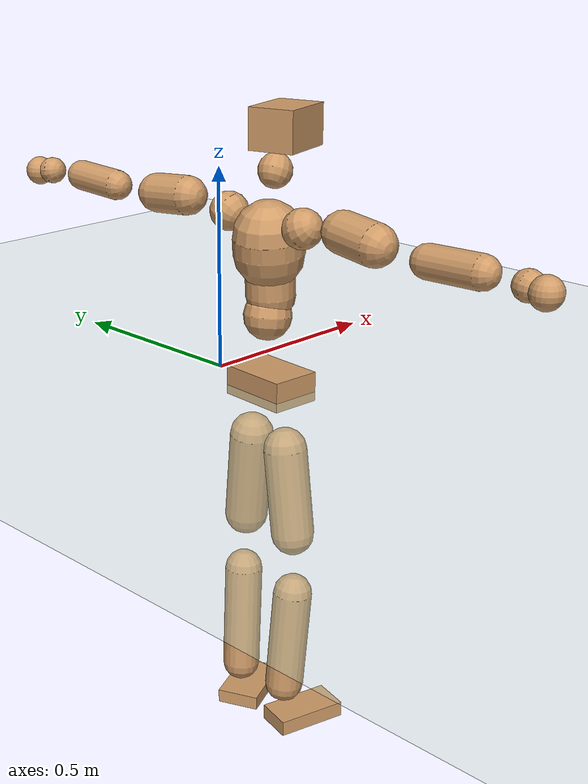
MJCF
<mujoco model="humanoid">
  <compiler coordinate="local" angle="radian"/>
  <default>
    <joint damping="0.0" armature="0.01" stiffness="0.0" limited="true"/>
    <geom conaffinity="1" condim="3" contype="7" margin="0.001" rgba="0.8 0.6 .4 1"/>
  </default>
  <asset>
    <texture type="skybox" builtin="gradient" rgb1=".4 .5 .6" rgb2="0 0 0" width="100" height="100"/>
    <texture builtin="flat" height="1278" mark="cross" markrgb="1 1 1" name="texgeom" random="0.01" rgb1="0.8 0.6 0.4" rgb2="0.8 0.6 0.4" type="cube" width="127"/>
    <texture builtin="checker" height="100" name="texplane" rgb1="0 0 0" rgb2="0.8 0.8 0.8" type="2d" width="100"/>
    <material name="MatPlane" reflectance="0.5" shininess="1" specular="1" texrepeat="60 60" texture="texplane"/>
    <material name="geom" texture="texgeom" texuniform="true"/>
  </asset>
  <worldbody>
    <light cutoff="100" diffuse="1 1 1" dir="-0 0 -1.3" directional="true" exponent="1" pos="0 0 1.3" specular=".1 .1 .1"/>
    <geom conaffinity="1" condim="3" name="floor" pos="0 0 0" rgba="0.8 0.9 0.8 1" size="100 100 .2" type="plane" material="MatPlane"/>
    <body name="Pelvis" pos="-0.0052 -0.1927 0.0191">
      <freejoint name="Pelvis"/>
      <geom type="box" contype="1" conaffinity="1" density="5359.37538" pos="-0.0118 0.0007 -0.0078" size="0.0622 0.0885 0.036" quat="0.9996 0.0000 0.0000 -0.0279" name="Pelvis"/>
      <body name="L_Hip" pos="-0.0225 0.0467 -0.0709">
        <joint name="L_Hip_x" type="hinge" pos="0 0 0" axis="1 0 0" stiffness="1600" damping="160" armature="0.02" range="-180.0000 180.0000"/>
        <joint name="L_Hip_y" type="hinge" pos="0 0 0" axis="0 1 0" stiffness="1600" damping="160" armature="0.02" range="-180.0000 180.0000"/>
        <joint name="L_Hip_z" type="hinge" pos="0 0 0" axis="0 0 1" stiffness="1600" damping="160" armature="0.02" range="-180.0000 180.0000"/>
        <geom type="capsule" contype="1" conaffinity="1" density="2040.816327" size="0.054" fromto="0.0037 0.0108 -0.0832 0.0140 0.0407 -0.3121" name="L_Hip"/>
        <body name="L_Knee" pos="0.0178 0.0515 -0.3953">
          <joint name="L_Knee_x" type="hinge" pos="0 0 0" axis="1 0 0" stiffness="1600" damping="160" armature="0.02" range="-180.0000 180.0000"/>
          <joint name="L_Knee_y" type="hinge" pos="0 0 0" axis="0 1 0" stiffness="1600" damping="160" armature="0.02" range="-180.0000 180.0000"/>
          <joint name="L_Knee_z" type="hinge" pos="0 0 0" axis="0 0 1" stiffness="1600" damping="160" armature="0.02" range="-180.0000 180.0000"/>
          <geom type="capsule" contype="1" conaffinity="1" density="1234.567901" size="0.0474" fromto="-0.0050 -0.0020 -0.0772 -0.0225 -0.0091 -0.3489" name="L_Knee"/>
          <body name="L_Ankle" pos="-0.0274 -0.0111 -0.4261">
            <joint name="L_Ankle_x" type="hinge" pos="0 0 0" axis="1 0 0" stiffness="1600" damping="160" armature="0.02" range="-180.0000 180.0000"/>
            <joint name="L_Ankle_y" type="hinge" pos="0 0 0" axis="0 1 0" stiffness="1600" damping="160" armature="0.02" range="-180.0000 180.0000"/>
            <joint name="L_Ankle_z" type="hinge" pos="0 0 0" axis="0 0 1" stiffness="1600" damping="160" armature="0.02" range="-180.0000 180.0000"/>
            <geom type="box" contype="1" conaffinity="1" density="1000.000049" pos="0.0583 0.0256 -0.0301" size="0.0851 0.0542 0.0177" quat="0.9787 0.0000 0.0000 0.2053" name="L_Ankle"/>
            <body name="L_Toe" pos="0.1165 0.0511 -0.0603">
              <joint name="L_Toe_x" type="hinge" pos="0 0 0" axis="1 0 0" stiffness="1000" damping="100" armature="0.02" range="-180.0000 180.0000"/>
              <joint name="L_Toe_y" type="hinge" pos="0 0 0" axis="0 1 0" stiffness="1000" damping="100" armature="0.02" range="-180.0000 180.0000"/>
              <joint name="L_Toe_z" type="hinge" pos="0 0 0" axis="0 0 1" stiffness="1000" damping="100" armature="0.02" range="-180.0000 180.0000"/>
              <geom type="box" contype="1" conaffinity="1" density="7629935.239909" pos="0.0000 0.0000 0.0315" size="0.001 0.0026 0.001" quat="0.9779 0.0000 0.0000 0.2091" name="L_Toe"/>
            </body>
          </body>
        </body>
      </body>
      <body name="R_Hip" pos="-0.02 -0.0468 -0.0782">
        <joint name="R_Hip_x" type="hinge" pos="0 0 0" axis="1 0 0" stiffness="1600" damping="160" armature="0.02" range="-180.0000 180.0000"/>
        <joint name="R_Hip_y" type="hinge" pos="0 0 0" axis="0 1 0" stiffness="1600" damping="160" armature="0.02" range="-180.0000 180.0000"/>
        <joint name="R_Hip_z" type="hinge" pos="0 0 0" axis="0 0 1" stiffness="1600" damping="160" armature="0.02" range="-180.0000 180.0000"/>
        <geom type="capsule" contype="1" conaffinity="1" density="2040.816327" size="0.0528" fromto="0.0005 -0.0101 -0.0822 0.0019 -0.0369 -0.3007" name="R_Hip"/>
        <body name="R_Knee" pos="0.0024 -0.047 -0.3829">
          <joint name="R_Knee_x" type="hinge" pos="0 0 0" axis="1 0 0" stiffness="1600" damping="160" armature="0.02" range="-180.0000 180.0000"/>
          <joint name="R_Knee_y" type="hinge" pos="0 0 0" axis="0 1 0" stiffness="1600" damping="160" armature="0.02" range="-180.0000 180.0000"/>
          <joint name="R_Knee_z" type="hinge" pos="0 0 0" axis="0 0 1" stiffness="1600" damping="160" armature="0.02" range="-180.0000 180.0000"/>
          <geom type="capsule" contype="1" conaffinity="1" density="1234.567901" size="0.0483" fromto="-0.0050 0.0031 -0.0781 -0.0216 0.0133 -0.3369" name="R_Knee"/>
          <body name="R_Ankle" pos="-0.0266 0.0164 -0.415">
            <joint name="R_Ankle_x" type="hinge" pos="0 0 0" axis="1 0 0" stiffness="1600" damping="160" armature="0.02" range="-180.0000 180.0000"/>
            <joint name="R_Ankle_y" type="hinge" pos="0 0 0" axis="0 1 0" stiffness="1600" damping="160" armature="0.02" range="-180.0000 180.0000"/>
            <joint name="R_Ankle_z" type="hinge" pos="0 0 0" axis="0 0 1" stiffness="1600" damping="160" armature="0.02" range="-180.0000 180.0000"/>
            <geom type="box" contype="1" conaffinity="1" density="1000.000046" pos="0.0633 -0.0155 -0.0302" size="0.09 0.0469 0.0197" quat="0.9928 0.0000 0.0000 -0.1198" name="R_Ankle"/>
            <body name="R_Toe" pos="0.1265 -0.031 -0.0604">
              <joint name="R_Toe_x" type="hinge" pos="0 0 0" axis="1 0 0" stiffness="1000" damping="100" armature="0.02" range="-180.0000 180.0000"/>
              <joint name="R_Toe_y" type="hinge" pos="0 0 0" axis="0 1 0" stiffness="1000" damping="100" armature="0.02" range="-180.0000 180.0000"/>
              <joint name="R_Toe_z" type="hinge" pos="0 0 0" axis="0 0 1" stiffness="1000" damping="100" armature="0.02" range="-180.0000 180.0000"/>
              <geom type="box" contype="1" conaffinity="1" density="9223143.677989" pos="0.0000 0.0000 0.0321" size="0.0008 0.0023 0.0011" quat="0.9939 0.0000 0.0000 -0.1106" name="R_Toe"/>
            </body>
          </body>
        </body>
      </body>
      <body name="Torso" pos="-0.0283 0.0041 0.1021">
        <joint name="Torso_x" type="hinge" pos="0 0 0" axis="1 0 0" stiffness="2000" damping="200" armature="0.02" range="-180.0000 180.0000"/>
        <joint name="Torso_y" type="hinge" pos="0 0 0" axis="0 1 0" stiffness="2000" damping="200" armature="0.02" range="-180.0000 180.0000"/>
        <joint name="Torso_z" type="hinge" pos="0 0 0" axis="0 0 1" stiffness="2000" damping="200" armature="0.02" range="-180.0000 180.0000"/>
        <geom type="capsule" contype="1" conaffinity="1" density="2040.816327" size="0.0581" fromto="0.0102 0.0016 0.0577 0.0105 0.0017 0.0597" name="Torso"/>
        <body name="Spine" pos="0.0207 0.0033 0.1174">
          <joint name="Spine_x" type="hinge" pos="0 0 0" axis="1 0 0" stiffness="2000" damping="200" armature="0.02" range="-180.0000 180.0000"/>
          <joint name="Spine_y" type="hinge" pos="0 0 0" axis="0 1 0" stiffness="2000" damping="200" armature="0.02" range="-180.0000 180.0000"/>
          <joint name="Spine_z" type="hinge" pos="0 0 0" axis="0 0 1" stiffness="2000" damping="200" armature="0.02" range="-180.0000 180.0000"/>
          <geom type="capsule" contype="1" conaffinity="1" density="2040.816327" size="0.0597" fromto="-0.0027 -0.0004 0.0596 0.0005 0.0001 -0.0118" name="Spine"/>
          <body name="Chest" pos="-0.0022 -0.0004 0.0478">
            <joint name="Chest_x" type="hinge" pos="0 0 0" axis="1 0 0" stiffness="2000" damping="200" armature="0.02" range="-180.0000 180.0000"/>
            <joint name="Chest_y" type="hinge" pos="0 0 0" axis="0 1 0" stiffness="2000" damping="200" armature="0.02" range="-180.0000 180.0000"/>
            <joint name="Chest_z" type="hinge" pos="0 0 0" axis="0 0 1" stiffness="2000" damping="200" armature="0.02" range="-180.0000 180.0000"/>
            <geom type="capsule" contype="1" conaffinity="1" density="2040.816327" size="0.0848" fromto="-0.0103 -0.0049 0.0840 -0.0056 -0.0026 0.0453" name="Chest"/>
            <body name="Neck" pos="-0.015 -0.013 0.1874">
              <joint name="Neck_x" type="hinge" pos="0 0 0" axis="1 0 0" stiffness="1000" damping="100" armature="0.02" range="-180.0000 180.0000"/>
              <joint name="Neck_y" type="hinge" pos="0 0 0" axis="0 1 0" stiffness="1000" damping="100" armature="0.02" range="-180.0000 180.0000"/>
              <joint name="Neck_z" type="hinge" pos="0 0 0" axis="0 0 1" stiffness="1000" damping="100" armature="0.02" range="-180.0000 180.0000"/>
              <geom type="capsule" contype="1" conaffinity="1" density="1000" size="0.0403" fromto="0.0220 0.0054 0.0445 0.0229 0.0056 0.0463" name="Neck"/>
              <body name="Head" pos="0.0449 0.0109 0.0909">
                <joint name="Head_x" type="hinge" pos="0 0 0" axis="1 0 0" stiffness="1000" damping="100" armature="0.02" range="-180.0000 180.0000"/>
                <joint name="Head_y" type="hinge" pos="0 0 0" axis="0 1 0" stiffness="1000" damping="100" armature="0.02" range="-180.0000 180.0000"/>
                <joint name="Head_z" type="hinge" pos="0 0 0" axis="0 0 1" stiffness="1000" damping="100" armature="0.02" range="-180.0000 180.0000"/>
                <geom type="box" contype="1" conaffinity="1" density="2250.000162" pos="0.0234 0.0065 0.0464" size="0.0732 0.0566 0.0484" quat="0.9910 0.0000 0.0000 0.1342" name="Head"/>
              </body>
            </body>
            <body name="L_Thorax" pos="-0.0136 0.0608 0.1014">
              <joint name="L_Thorax_x" type="hinge" pos="0 0 0" axis="1 0 0" stiffness="1000" damping="100" armature="0.02" range="-180.0000 180.0000"/>
              <joint name="L_Thorax_y" type="hinge" pos="0 0 0" axis="0 1 0" stiffness="1000" damping="100" armature="0.02" range="-180.0000 180.0000"/>
              <joint name="L_Thorax_z" type="hinge" pos="0 0 0" axis="0 0 1" stiffness="1000" damping="100" armature="0.02" range="-180.0000 180.0000"/>
              <geom type="capsule" contype="1" conaffinity="1" density="1000" size="0.0465" fromto="-0.0046 0.0538 0.0225 -0.0047 0.0557 0.0233" name="L_Thorax"/>
              <body name="L_Shoulder" pos="-0.0093 0.1095 0.0457">
                <joint name="L_Shoulder_x" type="hinge" pos="0 0 0" axis="1 0 0" stiffness="1000" damping="100" armature="0.02" range="-720.0000 720.0000"/>
                <joint name="L_Shoulder_y" type="hinge" pos="0 0 0" axis="0 1 0" stiffness="1000" damping="100" armature="0.02" range="-720.0000 720.0000"/>
                <joint name="L_Shoulder_z" type="hinge" pos="0 0 0" axis="0 0 1" stiffness="1000" damping="100" armature="0.02" range="-720.0000 720.0000"/>
                <geom type="capsule" contype="1" conaffinity="1" density="1000" size="0.0475" fromto="-0.0063 0.0771 -0.0056 -0.0145 0.1767 -0.0128" name="L_Shoulder"/>
                <body name="L_Elbow" pos="-0.0208 0.2538 -0.0184">
                  <joint name="L_Elbow_x" type="hinge" pos="0 0 0" axis="1 0 0" stiffness="1000" damping="100" armature="0.02" range="-720.0000 720.0000"/>
                  <joint name="L_Elbow_y" type="hinge" pos="0 0 0" axis="0 1 0" stiffness="1000" damping="100" armature="0.02" range="-720.0000 720.0000"/>
                  <joint name="L_Elbow_z" type="hinge" pos="0 0 0" axis="0 0 1" stiffness="1000" damping="100" armature="0.02" range="-720.0000 720.0000"/>
                  <geom type="capsule" contype="1" conaffinity="1" density="1000" size="0.0374" fromto="-0.0021 0.0673 0.0030 -0.0063 0.2017 0.0091" name="L_Elbow"/>
                  <body name="L_Wrist" pos="-0.0084 0.269 0.0121">
                    <joint name="L_Wrist_x" type="hinge" pos="0 0 0" axis="1 0 0" stiffness="600" damping="60" armature="0.02" range="-180.0000 180.0000"/>
                    <joint name="L_Wrist_y" type="hinge" pos="0 0 0" axis="0 1 0" stiffness="600" damping="60" armature="0.02" range="-180.0000 180.0000"/>
                    <joint name="L_Wrist_z" type="hinge" pos="0 0 0" axis="0 0 1" stiffness="600" damping="60" armature="0.02" range="-180.0000 180.0000"/>
                    <geom type="capsule" contype="1" conaffinity="1" density="1000" size="0.0334" fromto="-0.0080 0.0432 -0.0052 -0.0084 0.0451 -0.0055" name="L_Wrist"/>
                    <body name="L_Hand" pos="-0.0164 0.0883 -0.0107">
                      <joint name="L_Hand_x" type="hinge" pos="0 0 0" axis="1 0 0" stiffness="600" damping="60" armature="0.02" range="-180.0000 180.0000"/>
                      <joint name="L_Hand_y" type="hinge" pos="0 0 0" axis="0 1 0" stiffness="600" damping="60" armature="0.02" range="-180.0000 180.0000"/>
                      <joint name="L_Hand_z" type="hinge" pos="0 0 0" axis="0 0 1" stiffness="600" damping="60" armature="0.02" range="-180.0000 180.0000"/>
                      <geom type="sphere" contype="1" conaffinity="1" density="1000" size="0.0358" pos="0.0000 0.0000 0.0000" name="L_Hand"/>
                    </body>
                  </body>
                </body>
              </body>
            </body>
            <body name="R_Thorax" pos="-0.019 -0.0703 0.0992">
              <joint name="R_Thorax_x" type="hinge" pos="0 0 0" axis="1 0 0" stiffness="1000" damping="100" armature="0.02" range="-180.0000 180.0000"/>
              <joint name="R_Thorax_y" type="hinge" pos="0 0 0" axis="0 1 0" stiffness="1000" damping="100" armature="0.02" range="-180.0000 180.0000"/>
              <joint name="R_Thorax_z" type="hinge" pos="0 0 0" axis="0 0 1" stiffness="1000" damping="100" armature="0.02" range="-180.0000 180.0000"/>
              <geom type="capsule" contype="1" conaffinity="1" density="1000" size="0.047" fromto="-0.0010 -0.0486 0.0230 -0.0010 -0.0504 0.0239" name="R_Thorax"/>
              <body name="R_Shoulder" pos="-0.002 -0.099 0.0469">
                <joint name="R_Shoulder_x" type="hinge" pos="0 0 0" axis="1 0 0" stiffness="1000" damping="100" armature="0.02" range="-720.0000 720.0000"/>
                <joint name="R_Shoulder_y" type="hinge" pos="0 0 0" axis="0 1 0" stiffness="1000" damping="100" armature="0.02" range="-720.0000 720.0000"/>
                <joint name="R_Shoulder_z" type="hinge" pos="0 0 0" axis="0 0 1" stiffness="1000" damping="100" armature="0.02" range="-720.0000 720.0000"/>
                <geom type="capsule" contype="1" conaffinity="1" density="1000" size="0.0485" fromto="-0.0078 -0.0778 -0.0068 -0.0178 -0.1780 -0.0154" name="R_Shoulder"/>
                <body name="R_Elbow" pos="-0.0256 -0.2558 -0.0222">
                  <joint name="R_Elbow_x" type="hinge" pos="0 0 0" axis="1 0 0" stiffness="1000" damping="100" armature="0.02" range="-720.0000 720.0000"/>
                  <joint name="R_Elbow_y" type="hinge" pos="0 0 0" axis="0 1 0" stiffness="1000" damping="100" armature="0.02" range="-720.0000 720.0000"/>
                  <joint name="R_Elbow_z" type="hinge" pos="0 0 0" axis="0 0 1" stiffness="1000" damping="100" armature="0.02" range="-720.0000 720.0000"/>
                  <geom type="capsule" contype="1" conaffinity="1" density="1000" size="0.0375" fromto="-0.0010 -0.0674 0.0023 -0.0031 -0.2047 0.0069" name="R_Elbow"/>
                  <body name="R_Wrist" pos="-0.0042 -0.2721 0.0091">
                    <joint name="R_Wrist_x" type="hinge" pos="0 0 0" axis="1 0 0" stiffness="600" damping="60" armature="0.02" range="-180.0000 180.0000"/>
                    <joint name="R_Wrist_y" type="hinge" pos="0 0 0" axis="0 1 0" stiffness="600" damping="60" armature="0.02" range="-180.0000 180.0000"/>
                    <joint name="R_Wrist_z" type="hinge" pos="0 0 0" axis="0 0 1" stiffness="600" damping="60" armature="0.02" range="-180.0000 180.0000"/>
                    <geom type="capsule" contype="1" conaffinity="1" density="1000" size="0.0332" fromto="-0.0053 -0.0429 -0.0041 -0.0055 -0.0449 -0.0043" name="R_Wrist"/>
                    <body name="R_Hand" pos="-0.0108 -0.0878 -0.0085">
                      <joint name="R_Hand_x" type="hinge" pos="0 0 0" axis="1 0 0" stiffness="600" damping="60" armature="0.02" range="-180.0000 180.0000"/>
                      <joint name="R_Hand_y" type="hinge" pos="0 0 0" axis="0 1 0" stiffness="600" damping="60" armature="0.02" range="-180.0000 180.0000"/>
                      <joint name="R_Hand_z" type="hinge" pos="0 0 0" axis="0 0 1" stiffness="600" damping="60" armature="0.02" range="-180.0000 180.0000"/>
                      <geom type="sphere" contype="1" conaffinity="1" density="1000" size="0.0354" pos="0.0000 0.0000 0.0000" name="R_Hand"/>
                    </body>
                  </body>
                </body>
              </body>
            </body>
          </body>
        </body>
      </body>
    </body>
  </worldbody>
  <actuator>
    <motor name="L_Hip_x" joint="L_Hip_x" gear="500"/>
    <motor name="L_Hip_y" joint="L_Hip_y" gear="500"/>
    <motor name="L_Hip_z" joint="L_Hip_z" gear="500"/>
    <motor name="L_Knee_x" joint="L_Knee_x" gear="500"/>
    <motor name="L_Knee_y" joint="L_Knee_y" gear="500"/>
    <motor name="L_Knee_z" joint="L_Knee_z" gear="500"/>
    <motor name="L_Ankle_x" joint="L_Ankle_x" gear="500"/>
    <motor name="L_Ankle_y" joint="L_Ankle_y" gear="500"/>
    <motor name="L_Ankle_z" joint="L_Ankle_z" gear="500"/>
    <motor name="L_Toe_x" joint="L_Toe_x" gear="500"/>
    <motor name="L_Toe_y" joint="L_Toe_y" gear="500"/>
    <motor name="L_Toe_z" joint="L_Toe_z" gear="500"/>
    <motor name="R_Hip_x" joint="R_Hip_x" gear="500"/>
    <motor name="R_Hip_y" joint="R_Hip_y" gear="500"/>
    <motor name="R_Hip_z" joint="R_Hip_z" gear="500"/>
    <motor name="R_Knee_x" joint="R_Knee_x" gear="500"/>
    <motor name="R_Knee_y" joint="R_Knee_y" gear="500"/>
    <motor name="R_Knee_z" joint="R_Knee_z" gear="500"/>
    <motor name="R_Ankle_x" joint="R_Ankle_x" gear="500"/>
    <motor name="R_Ankle_y" joint="R_Ankle_y" gear="500"/>
    <motor name="R_Ankle_z" joint="R_Ankle_z" gear="500"/>
    <motor name="R_Toe_x" joint="R_Toe_x" gear="500"/>
    <motor name="R_Toe_y" joint="R_Toe_y" gear="500"/>
    <motor name="R_Toe_z" joint="R_Toe_z" gear="500"/>
    <motor name="Torso_x" joint="Torso_x" gear="500"/>
    <motor name="Torso_y" joint="Torso_y" gear="500"/>
    <motor name="Torso_z" joint="Torso_z" gear="500"/>
    <motor name="Spine_x" joint="Spine_x" gear="500"/>
    <motor name="Spine_y" joint="Spine_y" gear="500"/>
    <motor name="Spine_z" joint="Spine_z" gear="500"/>
    <motor name="Chest_x" joint="Chest_x" gear="500"/>
    <motor name="Chest_y" joint="Chest_y" gear="500"/>
    <motor name="Chest_z" joint="Chest_z" gear="500"/>
    <motor name="Neck_x" joint="Neck_x" gear="500"/>
    <motor name="Neck_y" joint="Neck_y" gear="500"/>
    <motor name="Neck_z" joint="Neck_z" gear="500"/>
    <motor name="Head_x" joint="Head_x" gear="500"/>
    <motor name="Head_y" joint="Head_y" gear="500"/>
    <motor name="Head_z" joint="Head_z" gear="500"/>
    <motor name="L_Thorax_x" joint="L_Thorax_x" gear="500"/>
    <motor name="L_Thorax_y" joint="L_Thorax_y" gear="500"/>
    <motor name="L_Thorax_z" joint="L_Thorax_z" gear="500"/>
    <motor name="L_Shoulder_x" joint="L_Shoulder_x" gear="500"/>
    <motor name="L_Shoulder_y" joint="L_Shoulder_y" gear="500"/>
    <motor name="L_Shoulder_z" joint="L_Shoulder_z" gear="500"/>
    <motor name="L_Elbow_x" joint="L_Elbow_x" gear="500"/>
    <motor name="L_Elbow_y" joint="L_Elbow_y" gear="500"/>
    <motor name="L_Elbow_z" joint="L_Elbow_z" gear="500"/>
    <motor name="L_Wrist_x" joint="L_Wrist_x" gear="500"/>
    <motor name="L_Wrist_y" joint="L_Wrist_y" gear="500"/>
    <motor name="L_Wrist_z" joint="L_Wrist_z" gear="500"/>
    <motor name="L_Hand_x" joint="L_Hand_x" gear="500"/>
    <motor name="L_Hand_y" joint="L_Hand_y" gear="500"/>
    <motor name="L_Hand_z" joint="L_Hand_z" gear="500"/>
    <motor name="R_Thorax_x" joint="R_Thorax_x" gear="500"/>
    <motor name="R_Thorax_y" joint="R_Thorax_y" gear="500"/>
    <motor name="R_Thorax_z" joint="R_Thorax_z" gear="500"/>
    <motor name="R_Shoulder_x" joint="R_Shoulder_x" gear="500"/>
    <motor name="R_Shoulder_y" joint="R_Shoulder_y" gear="500"/>
    <motor name="R_Shoulder_z" joint="R_Shoulder_z" gear="500"/>
    <motor name="R_Elbow_x" joint="R_Elbow_x" gear="500"/>
    <motor name="R_Elbow_y" joint="R_Elbow_y" gear="500"/>
    <motor name="R_Elbow_z" joint="R_Elbow_z" gear="500"/>
    <motor name="R_Wrist_x" joint="R_Wrist_x" gear="500"/>
    <motor name="R_Wrist_y" joint="R_Wrist_y" gear="500"/>
    <motor name="R_Wrist_z" joint="R_Wrist_z" gear="500"/>
    <motor name="R_Hand_x" joint="R_Hand_x" gear="500"/>
    <motor name="R_Hand_y" joint="R_Hand_y" gear="500"/>
    <motor name="R_Hand_z" joint="R_Hand_z" gear="500"/>
  </actuator>
  <contact>
    <exclude body1="Torso" body2="Chest"/>
    <exclude body1="Head" body2="Chest"/>
    <exclude body1="R_Knee" body2="R_Toe"/>
    <exclude body1="R_Knee" body2="L_Ankle"/>
    <exclude body1="R_Knee" body2="L_Toe"/>
    <exclude body1="L_Knee" body2="L_Toe"/>
    <exclude body1="L_Knee" body2="R_Ankle"/>
    <exclude body1="L_Knee" body2="R_Toe"/>
    <exclude body1="L_Shoulder" body2="Chest"/>
    <exclude body1="R_Shoulder" body2="Chest"/>
  </contact>
  <sensor/>
  <size njmax="700" nconmax="700"/>
</mujoco>
